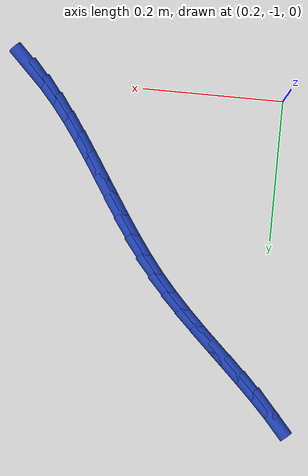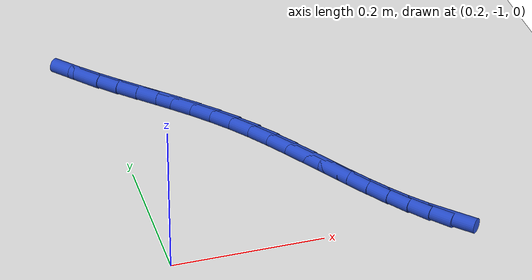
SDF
<sdf version="1.6">
 <world name="default">
  <model name="ground_plane">
   <static>1</static>
   <link name="link">
    <collision name="collision">
     <geometry><plane><normal>0 0 1</normal><size>100 100</size></plane></geometry>
     <surface><friction><ode><mu>100</mu><mu2>50</mu2></ode></friction></surface>
    </collision>
    <visual name="visual">
     <cast_shadows>0</cast_shadows>
     <geometry><plane><normal>0 0 1</normal><size>100 100</size></plane></geometry>
     <material>
      <script><uri>file://media/materials/scripts/gazebo.material</uri><name>Gazebo/WhiteGlow</name></script>
     </material>
    </visual>
   </link>
  </model>
  <model name="line">
   <link name="link_202">
    <pose>0.5598115535666608 -1.0140194312073838 0.01 0 1.57 -0.7867505122217507</pose>
    <collision name="collision">
     <geometry><cylinder><radius>0.01</radius><length>0.08</length></cylinder></geometry>
    </collision>
    <visual name="visual">
     <material>
      <script><name>Gazebo/Blue</name><uri>file://media/materials/scripts/gazebo.material</uri></script>
     </material>
     <geometry><cylinder><radius>0.01</radius><length>0.08</length></cylinder></geometry>
    </visual>
   </link>
   <link name="link_203">
    <pose>0.5387691997310208 -0.9929200870612819 0.01 0 1.57 -0.8559561020071762</pose>
    <collision name="collision">
     <geometry><cylinder><radius>0.01</radius><length>0.08</length></cylinder></geometry>
    </collision>
    <visual name="visual">
     <material>
      <script><name>Gazebo/Blue</name><uri>file://media/materials/scripts/gazebo.material</uri></script>
     </material>
     <geometry><cylinder><radius>0.01</radius><length>0.08</length></cylinder></geometry>
    </visual>
   </link>
   <link name="link_204">
    <pose>0.5189202764143481 -0.9700521375976983 0.01 0 1.57 -0.910713304132195</pose>
    <collision name="collision">
     <geometry><cylinder><radius>0.01</radius><length>0.08</length></cylinder></geometry>
    </collision>
    <visual name="visual">
     <material>
      <script><name>Gazebo/Blue</name><uri>file://media/materials/scripts/gazebo.material</uri></script>
     </material>
     <geometry><cylinder><radius>0.01</radius><length>0.08</length></cylinder></geometry>
    </visual>
   </link>
   <link name="link_205">
    <pose>0.5000292435464185 -0.9457154856434421 0.01 0 1.57 -0.9518330478410387</pose>
    <collision name="collision">
     <geometry><cylinder><radius>0.01</radius><length>0.08</length></cylinder></geometry>
    </collision>
    <visual name="visual">
     <material>
      <script><name>Gazebo/Blue</name><uri>file://media/materials/scripts/gazebo.material</uri></script>
     </material>
     <geometry><cylinder><radius>0.01</radius><length>0.08</length></cylinder></geometry>
    </visual>
   </link>
   <link name="link_206">
    <pose>0.48186056105700836 -0.9202100340253228 0.01 0 1.57 -0.9802002452749164</pose>
    <collision name="collision">
     <geometry><cylinder><radius>0.01</radius><length>0.08</length></cylinder></geometry>
    </collision>
    <visual name="visual">
     <material>
      <script><name>Gazebo/Blue</name><uri>file://media/materials/scripts/gazebo.material</uri></script>
     </material>
     <geometry><cylinder><radius>0.01</radius><length>0.08</length></cylinder></geometry>
    </visual>
   </link>
   <link name="link_207">
    <pose>0.46417868887589353 -0.8938356855701495 0.01 0 1.57 -0.996578502465538</pose>
    <collision name="collision">
     <geometry><cylinder><radius>0.01</radius><length>0.08</length></cylinder></geometry>
    </collision>
    <visual name="visual">
     <material>
      <script><name>Gazebo/Blue</name><uri>file://media/materials/scripts/gazebo.material</uri></script>
     </material>
     <geometry><cylinder><radius>0.01</radius><length>0.08</length></cylinder></geometry>
    </visual>
   </link>
   <link name="link_208">
    <pose>0.4467480869328491 -0.8668923431047302 0.01 0 1.57 -1.0015114416914166</pose>
    <collision name="collision">
     <geometry><cylinder><radius>0.01</radius><length>0.08</length></cylinder></geometry>
    </collision>
    <visual name="visual">
     <material>
      <script><name>Gazebo/Blue</name><uri>file://media/materials/scripts/gazebo.material</uri></script>
     </material>
     <geometry><cylinder><radius>0.01</radius><length>0.08</length></cylinder></geometry>
    </visual>
   </link>
   <link name="link_209">
    <pose>0.42933321515765277 -0.8396799094558769 0.01 0 1.57 -0.9952846936976997</pose>
    <collision name="collision">
     <geometry><cylinder><radius>0.01</radius><length>0.08</length></cylinder></geometry>
    </collision>
    <visual name="visual">
     <material>
      <script><name>Gazebo/Blue</name><uri>file://media/materials/scripts/gazebo.material</uri></script>
     </material>
     <geometry><cylinder><radius>0.01</radius><length>0.08</length></cylinder></geometry>
    </visual>
   </link>
   <link name="link_210">
    <pose>0.4116985334800797 -0.8124982874503973 0.01 0 1.57 -0.9779255502977304</pose>
    <collision name="collision">
     <geometry><cylinder><radius>0.01</radius><length>0.08</length></cylinder></geometry>
    </collision>
    <visual name="visual">
     <material>
      <script><name>Gazebo/Blue</name><uri>file://media/materials/scripts/gazebo.material</uri></script>
     </material>
     <geometry><cylinder><radius>0.01</radius><length>0.08</length></cylinder></geometry>
    </visual>
   </link>
   <link name="link_211">
    <pose>0.39360850182990553 -0.7856473799151007 0.01 0 1.57 -0.9492312709110506</pose>
    <collision name="collision">
     <geometry><cylinder><radius>0.01</radius><length>0.08</length></cylinder></geometry>
    </collision>
    <visual name="visual">
     <material>
      <script><name>Gazebo/Blue</name><uri>file://media/materials/scripts/gazebo.material</uri></script>
     </material>
     <geometry><cylinder><radius>0.01</radius><length>0.08</length></cylinder></geometry>
    </visual>
   </link>
   <link name="link_212">
    <pose>0.37482758013690687 -0.7594270896767968 0.01 0 1.57 -0.9088291621103372</pose>
    <collision name="collision">
     <geometry><cylinder><radius>0.01</radius><length>0.08</length></cylinder></geometry>
    </collision>
    <visual name="visual">
     <material>
      <script><name>Gazebo/Blue</name><uri>file://media/materials/scripts/gazebo.material</uri></script>
     </material>
     <geometry><cylinder><radius>0.01</radius><length>0.08</length></cylinder></geometry>
    </visual>
   </link>
   <link name="link_213">
    <pose>0.35512022833085943 -0.734137319562295 0.01 0 1.57 -0.8597924806848675</pose>
    <collision name="collision">
     <geometry><cylinder><radius>0.01</radius><length>0.08</length></cylinder></geometry>
    </collision>
    <visual name="visual">
     <material>
      <script><name>Gazebo/Blue</name><uri>file://media/materials/scripts/gazebo.material</uri></script>
     </material>
     <geometry><cylinder><radius>0.01</radius><length>0.08</length></cylinder></geometry>
    </visual>
   </link>
   <link name="link_214">
    <pose>0.33432736159990595 -0.7099953776363179 0.01 0 1.57 -0.8176232548526184</pose>
    <collision name="collision">
     <geometry><cylinder><radius>0.01</radius><length>0.08</length></cylinder></geometry>
    </collision>
    <visual name="visual">
     <material>
      <script><name>Gazebo/Blue</name><uri>file://media/materials/scripts/gazebo.material</uri></script>
     </material>
     <geometry><cylinder><radius>0.01</radius><length>0.08</length></cylinder></geometry>
    </visual>
   </link>
   <link name="link_215">
    <pose>0.3126293572323118 -0.6868518504064823 0.01 0 1.57 -0.7869115452656735</pose>
    <collision name="collision">
     <geometry><cylinder><radius>0.01</radius><length>0.08</length></cylinder></geometry>
    </collision>
    <visual name="visual">
     <material>
      <script><name>Gazebo/Blue</name><uri>file://media/materials/scripts/gazebo.material</uri></script>
     </material>
     <geometry><cylinder><radius>0.01</radius><length>0.08</length></cylinder></geometry>
    </visual>
   </link>
   <link name="link_216">
    <pose>0.2903007733285806 -0.6644555806685166 0.01 0 1.57 -0.7678058904235227</pose>
    <collision name="collision">
     <geometry><cylinder><radius>0.01</radius><length>0.08</length></cylinder></geometry>
    </collision>
    <visual name="visual">
     <material>
      <script><name>Gazebo/Blue</name><uri>file://media/materials/scripts/gazebo.material</uri></script>
     </material>
     <geometry><cylinder><radius>0.01</radius><length>0.08</length></cylinder></geometry>
    </visual>
   </link>
   <link name="link_217">
    <pose>0.2676161715607873 -0.6425554073597701 0.01 0 1.57 -0.7603968990002398</pose>
    <collision name="collision">
     <geometry><cylinder><radius>0.01</radius><length>0.08</length></cylinder></geometry>
    </collision>
    <visual name="visual">
     <material>
      <script><name>Gazebo/Blue</name><uri>file://media/materials/scripts/gazebo.material</uri></script>
     </material>
     <geometry><cylinder><radius>0.01</radius><length>0.08</length></cylinder></geometry>
    </visual>
   </link>
   <link name="link_218">
    <pose>0.24485011360100706 -0.6209001694175926 0.01 0 1.57 -0.7647952042632193</pose>
    <collision name="collision">
     <geometry><cylinder><radius>0.01</radius><length>0.08</length></cylinder></geometry>
    </collision>
    <visual name="visual">
     <material>
      <script><name>Gazebo/Blue</name><uri>file://media/materials/scripts/gazebo.material</uri></script>
     </material>
     <geometry><cylinder><radius>0.01</radius><length>0.08</length></cylinder></geometry>
    </visual>
   </link>
   <link name="link_219">
    <pose>0.22227716112131496 -0.5992387057793344 0.01 0 1.57 -0.7811633541732317</pose>
    <collision name="collision">
     <geometry><cylinder><radius>0.01</radius><length>0.08</length></cylinder></geometry>
    </collision>
    <visual name="visual">
     <material>
      <script><name>Gazebo/Blue</name><uri>file://media/materials/scripts/gazebo.material</uri></script>
     </material>
     <geometry><cylinder><radius>0.01</radius><length>0.08</length></cylinder></geometry>
    </visual>
   </link>
   <link name="link_220">
    <pose>0.2001718757937865 -0.5773198553823453 0.01 0 1.57 -0.8096987149607056</pose>
    <collision name="collision">
     <geometry><cylinder><radius>0.01</radius><length>0.08</length></cylinder></geometry>
    </collision>
    <visual name="visual">
     <material>
      <script><name>Gazebo/Blue</name><uri>file://media/materials/scripts/gazebo.material</uri></script>
     </material>
     <geometry><cylinder><radius>0.01</radius><length>0.08</length></cylinder></geometry>
    </visual>
   </link>
   <link name="link_221">
    <pose>0.17880881929049694 -0.5548924571639753 0.01 0 1.57 -0.8505623962532737</pose>
    <collision name="collision">
     <geometry><cylinder><radius>0.01</radius><length>0.08</length></cylinder></geometry>
    </collision>
    <visual name="visual">
     <material>
      <script><name>Gazebo/Blue</name><uri>file://media/materials/scripts/gazebo.material</uri></script>
     </material>
     <geometry><cylinder><radius>0.01</radius><length>0.08</length></cylinder></geometry>
    </visual>
   </link>
  </model>
 </world>
</sdf>
